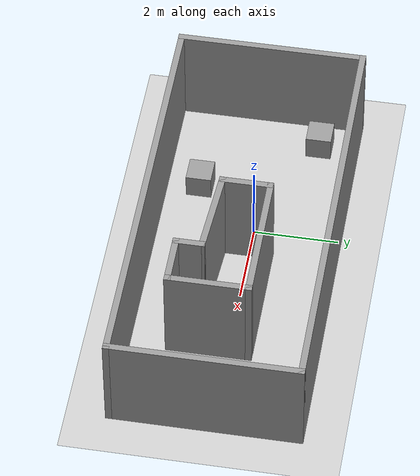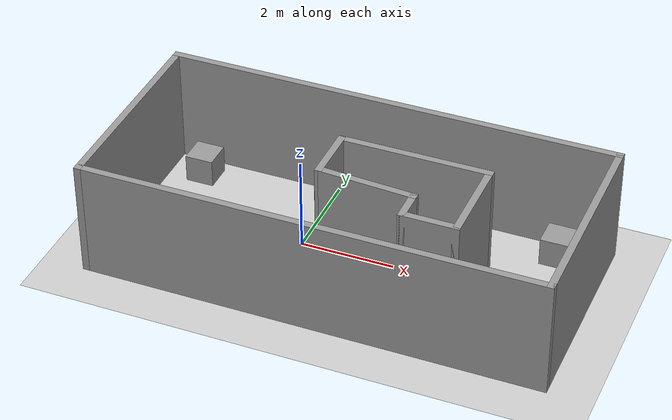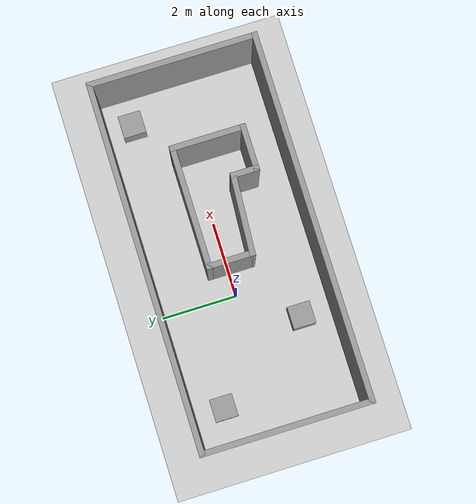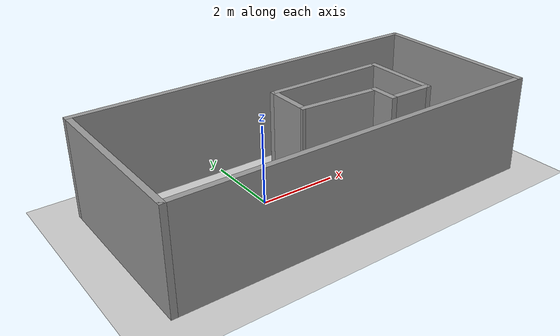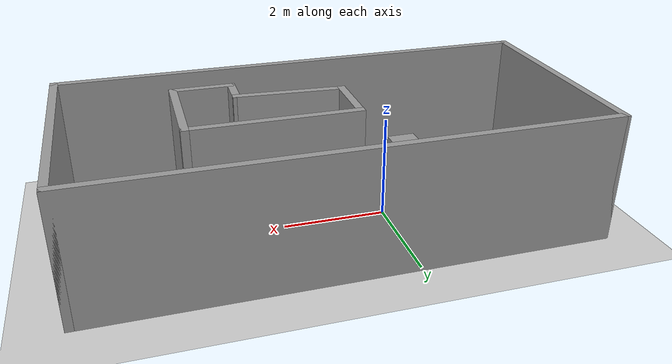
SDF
<sdf version="1.6">
 <world name="default">
  <light name="sun" type="directional">
   <pose>0 0 10 0 -0 0</pose>
   <diffuse>0.8 0.8 0.8 1</diffuse>
   <specular>0.2 0.2 0.2 1</specular>
   <attenuation>
    <range>1000</range>
    <constant>0.9</constant>
    <linear>0.01</linear>
    <quadratic>0.001</quadratic>
   </attenuation>
   <direction>-0.5 0.1 -0.9</direction>
  </light>
  <model name="ground_plane">
   <static>1</static>
   <link name="link">
    <collision name="collision">
     <geometry><plane><normal>0 0 1</normal><size>100 100</size></plane></geometry>
     <surface><friction><ode><mu>100</mu><mu2>50</mu2></ode></friction></surface>
    </collision>
    <visual name="visual">
     <cast_shadows>0</cast_shadows>
     <geometry><plane><normal>0 0 1</normal><size>100 100</size></plane></geometry>
     <material>
      <script><uri>file://media/materials/scripts/gazebo.material</uri><name>Gazebo/Grey</name></script>
     </material>
    </visual>
   </link>
  </model>
  <gravity>0 0 -9.8</gravity>
  <magnetic_field>6e-06 2.3e-05 -4.2e-05</magnetic_field>
  <atmosphere type="adiabatic"/>
  <physics name="default_physics" default="0" type="ode">
   <max_step_size>0.001</max_step_size>
   <real_time_factor>1</real_time_factor>
   <real_time_update_rate>1000</real_time_update_rate>
  </physics>
  <scene><ambient>0.4 0.4 0.4 1</ambient><background>0.7 0.7 0.7 1</background><shadows>1</shadows></scene>
  <audio><device>default</device></audio>
  <spherical_coordinates>
   <surface_model>EARTH_WGS84</surface_model>
   <latitude_deg>0</latitude_deg>
   <longitude_deg>0</longitude_deg>
   <elevation>0</elevation>
   <heading_deg>0</heading_deg>
  </spherical_coordinates>
  <model name="Untitledc2">
   <pose>1.14 -0.165 0 0 -0 0</pose>
   <link name="Wall_11">
    <collision name="Wall_11_Collision">
     <geometry><box><size>1.25 0.15 2.5</size></box></geometry>
     <pose>0 0 1.25 0 -0 0</pose>
    </collision>
    <visual name="Wall_11_Visual">
     <pose>0 0 1.25 0 -0 0</pose>
     <geometry><box><size>1.25 0.15 2.5</size></box></geometry>
     <material>
      <script><uri>file://media/materials/scripts/gazebo.material</uri><name>Gazebo/Grey</name></script>
      <ambient>1 1 1 1</ambient>
     </material>
     <meta><layer>0</layer></meta>
    </visual>
    <pose>-0.46 0.085 0 0 -0 -1.5708</pose>
   </link>
   <link name="Wall_13">
    <collision name="Wall_13_Collision">
     <geometry><box><size>0.75 0.15 2.5</size></box></geometry>
     <pose>0 0 1.25 0 -0 0</pose>
    </collision>
    <visual name="Wall_13_Visual">
     <pose>0 0 1.25 0 -0 0</pose>
     <geometry><box><size>0.75 0.15 2.5</size></box></geometry>
     <material>
      <script><uri>file://media/materials/scripts/gazebo.material</uri><name>Gazebo/Grey</name></script>
      <ambient>1 1 1 1</ambient>
     </material>
     <meta><layer>0</layer></meta>
    </visual>
    <pose>1.54 -0.895 0 0 -0 -1.5708</pose>
   </link>
   <link name="Wall_14">
    <collision name="Wall_14_Collision">
     <geometry><box><size>1.25 0.15 2.5</size></box></geometry>
     <pose>0 0 1.25 0 -0 0</pose>
    </collision>
    <visual name="Wall_14_Visual">
     <pose>0 0 1.25 0 -0 0</pose>
     <geometry><box><size>1.25 0.15 2.5</size></box></geometry>
     <material>
      <script><uri>file://media/materials/scripts/gazebo.material</uri><name>Gazebo/Grey</name></script>
      <ambient>1 1 1 1</ambient>
     </material>
     <meta><layer>0</layer></meta>
    </visual>
    <pose>2.09 -1.195 0 0 -0 0</pose>
   </link>
   <link name="Wall_15">
    <collision name="Wall_15_Collision">
     <geometry><box><size>2 0.15 2.5</size></box></geometry>
     <pose>0 0 1.25 0 -0 0</pose>
    </collision>
    <visual name="Wall_15_Visual">
     <pose>0 0 1.25 0 -0 0</pose>
     <geometry><box><size>2 0.15 2.5</size></box></geometry>
     <material>
      <script><uri>file://media/materials/scripts/gazebo.material</uri><name>Gazebo/Grey</name></script>
      <ambient>1 1 1 1</ambient>
     </material>
     <meta><layer>0</layer></meta>
    </visual>
    <pose>2.64 -0.27 0 0 -0 1.5708</pose>
   </link>
   <link name="Wall_16">
    <collision name="Wall_16_Collision">
     <geometry><box><size>3.25 0.15 2.5</size></box></geometry>
     <pose>0 0 1.25 0 -0 0</pose>
    </collision>
    <visual name="Wall_16_Visual">
     <pose>0 0 1.25 0 -0 0</pose>
     <geometry><box><size>3.25 0.15 2.5</size></box></geometry>
     <material>
      <script><uri>file://media/materials/scripts/gazebo.material</uri><name>Gazebo/Grey</name></script>
      <ambient>1 1 1 1</ambient>
     </material>
     <meta><layer>0</layer></meta>
    </visual>
    <pose>1.09 0.655 0 0 -0 3.14159</pose>
   </link>
   <link name="Wall_18">
    <collision name="Wall_18_Collision">
     <geometry><box><size>2.15422 0.15 2.5</size></box></geometry>
     <pose>0 0 1.25 0 -0 0</pose>
    </collision>
    <visual name="Wall_18_Visual">
     <pose>0 0 1.25 0 -0 0</pose>
     <geometry><box><size>2.15422 0.15 2.5</size></box></geometry>
     <material>
      <script><uri>file://media/materials/scripts/gazebo.material</uri><name>Gazebo/Grey</name></script>
      <ambient>1 1 1 1</ambient>
     </material>
     <meta><layer>0</layer></meta>
    </visual>
    <pose>0.54 -0.53 0 0 -0 -0.064909</pose>
   </link>
   <link name="Wall_3">
    <collision name="Wall_3_Collision">
     <geometry><box><size>4.5 0.15 2.5</size></box></geometry>
     <pose>0 0 1.25 0 -0 0</pose>
    </collision>
    <visual name="Wall_3_Visual">
     <pose>0 0 1.25 0 -0 0</pose>
     <geometry><box><size>4.5 0.15 2.5</size></box></geometry>
     <material>
      <script><uri>file://media/materials/scripts/gazebo.material</uri><name>Gazebo/Grey</name></script>
      <ambient>1 1 1 1</ambient>
     </material>
     <meta><layer>0</layer></meta>
    </visual>
    <pose>-4.8 -0 0 0 -0 -1.5708</pose>
   </link>
   <link name="Wall_5">
    <collision name="Wall_5_Collision">
     <geometry><box><size>9.75 0.15 2.5</size></box></geometry>
     <pose>0 0 1.25 0 -0 0</pose>
    </collision>
    <visual name="Wall_5_Visual">
     <pose>0 0 1.25 0 -0 0</pose>
     <geometry><box><size>9.75 0.15 2.5</size></box></geometry>
     <material>
      <script><uri>file://media/materials/scripts/gazebo.material</uri><name>Gazebo/Grey</name></script>
      <ambient>1 1 1 1</ambient>
     </material>
     <meta><layer>0</layer></meta>
    </visual>
    <pose>0 2.175 0 0 -0 0</pose>
   </link>
   <link name="Wall_6">
    <collision name="Wall_6_Collision">
     <geometry><box><size>4.5 0.15 2.5</size></box></geometry>
     <pose>0 0 1.25 0 -0 0</pose>
    </collision>
    <visual name="Wall_6_Visual">
     <pose>0 0 1.25 0 -0 0</pose>
     <geometry><box><size>4.5 0.15 2.5</size></box></geometry>
     <material>
      <script><uri>file://media/materials/scripts/gazebo.material</uri><name>Gazebo/Grey</name></script>
      <ambient>1 1 1 1</ambient>
     </material>
     <meta><layer>0</layer></meta>
    </visual>
    <pose>4.8 -0 0 0 -0 -1.5708</pose>
   </link>
   <link name="Wall_7">
    <collision name="Wall_7_Collision">
     <geometry><box><size>9.75 0.15 2.5</size></box></geometry>
     <pose>0 0 1.25 0 -0 0</pose>
    </collision>
    <visual name="Wall_7_Visual">
     <pose>0 0 1.25 0 -0 0</pose>
     <geometry><box><size>9.75 0.15 2.5</size></box></geometry>
     <material>
      <script><uri>file://media/materials/scripts/gazebo.material</uri><name>Gazebo/Grey</name></script>
      <ambient>1 1 1 1</ambient>
     </material>
     <meta><layer>0</layer></meta>
    </visual>
    <pose>0 -2.175 0 0 -0 3.14159</pose>
   </link>
   <static>1</static>
  </model>
  <model name="unit_box">
   <link name="link">
    <inertial>
     <mass>1</mass>
     <inertia>
      <ixx>0.166667</ixx>
      <ixy>0</ixy>
      <ixz>0</ixz>
      <iyy>0.166667</iyy>
      <iyz>0</iyz>
      <izz>0.166667</izz>
     </inertia>
    </inertial>
    <visual name="visual">
     <geometry><box><size>0.6 0.6 0.6</size></box></geometry>
     <material>
      <script><name>Gazebo/Grey</name><uri>file://media/materials/scripts/gazebo.material</uri></script>
      <shader type="vertex"><normal_map>__default__</normal_map></shader>
      <ambient>0.3 0.3 0.3 1</ambient>
      <diffuse>0.7 0.7 0.7 1</diffuse>
      <specular>0.01 0.01 0.01 1</specular>
      <emissive>0 0 0 1</emissive>
     </material>
    </visual>
    <collision name="collision">
     <geometry><box><size>0.6 0.6 0.6</size></box></geometry>
     <surface>
      <friction>
       <ode><mu>1</mu><mu2>1</mu2><fdir1>0 0 0</fdir1><slip1>0</slip1><slip2>0</slip2></ode>
       <torsional>
        <coefficient>1</coefficient>
        <patch_radius>0</patch_radius>
        <surface_radius>0</surface_radius>
        <use_patch_radius>1</use_patch_radius>
        <ode><slip>0</slip></ode>
       </torsional>
      </friction>
      <bounce><restitution_coefficient>0</restitution_coefficient><threshold>1e+06</threshold></bounce>
      <contact>
       <collide_without_contact>0</collide_without_contact>
       <collide_without_contact_bitmask>1</collide_without_contact_bitmask>
       <collide_bitmask>1</collide_bitmask>
       <ode>
        <soft_cfm>0</soft_cfm>
        <soft_erp>0.2</soft_erp>
        <kp>1e+13</kp>
        <kd>1</kd>
        <max_vel>0.01</max_vel>
        <min_depth>0</min_depth>
       </ode>
       <bullet>
        <split_impulse>1</split_impulse>
        <split_impulse_penetration_threshold>-0.01</split_impulse_penetration_threshold>
        <soft_cfm>0</soft_cfm>
        <soft_erp>0.2</soft_erp>
        <kp>1e+13</kp>
        <kd>1</kd>
       </bullet>
      </contact>
     </surface>
    </collision>
   </link>
   <link name="link_clone">
    <inertial>
     <mass>1</mass>
     <inertia>
      <ixx>0.166667</ixx>
      <ixy>0</ixy>
      <ixz>0</ixz>
      <iyy>0.166667</iyy>
      <iyz>0</iyz>
      <izz>0.166667</izz>
     </inertia>
    </inertial>
    <pose>1.67513 -2.6145 0 0 -0 0</pose>
    <visual name="visual">
     <geometry><box><size>0.6 0.6 0.6</size></box></geometry>
     <material>
      <script><name>Gazebo/Grey</name><uri>file://media/materials/scripts/gazebo.material</uri></script>
      <shader type="vertex"><normal_map>__default__</normal_map></shader>
      <ambient>0.3 0.3 0.3 1</ambient>
      <diffuse>0.7 0.7 0.7 1</diffuse>
      <specular>0.01 0.01 0.01 1</specular>
      <emissive>0 0 0 1</emissive>
     </material>
    </visual>
    <collision name="collision">
     <geometry><box><size>0.6 0.6 0.6</size></box></geometry>
     <surface>
      <friction>
       <ode><mu>1</mu><mu2>1</mu2><fdir1>0 0 0</fdir1><slip1>0</slip1><slip2>0</slip2></ode>
       <torsional>
        <coefficient>1</coefficient>
        <patch_radius>0</patch_radius>
        <surface_radius>0</surface_radius>
        <use_patch_radius>1</use_patch_radius>
        <ode><slip>0</slip></ode>
       </torsional>
      </friction>
      <bounce><restitution_coefficient>0</restitution_coefficient><threshold>1e+06</threshold></bounce>
      <contact>
       <collide_without_contact>0</collide_without_contact>
       <collide_without_contact_bitmask>1</collide_without_contact_bitmask>
       <collide_bitmask>1</collide_bitmask>
       <ode>
        <soft_cfm>0</soft_cfm>
        <soft_erp>0.2</soft_erp>
        <kp>1e+13</kp>
        <kd>1</kd>
        <max_vel>0.01</max_vel>
        <min_depth>0</min_depth>
       </ode>
       <bullet>
        <split_impulse>1</split_impulse>
        <split_impulse_penetration_threshold>-0.01</split_impulse_penetration_threshold>
        <soft_cfm>0</soft_cfm>
        <soft_erp>0.2</soft_erp>
        <kp>1e+13</kp>
        <kd>1</kd>
       </bullet>
      </contact>
     </surface>
    </collision>
   </link>
   <link name="link_clone_0">
    <inertial>
     <mass>1</mass>
     <inertia>
      <ixx>0.166667</ixx>
      <ixy>0</ixy>
      <ixz>0</ixz>
      <iyy>0.166667</iyy>
      <iyz>0</iyz>
      <izz>0.166667</izz>
     </inertia>
    </inertial>
    <pose>7.74183 0.108776 -0 0 -0 0</pose>
    <visual name="visual">
     <geometry><box><size>0.6 0.6 0.6</size></box></geometry>
     <material>
      <script><name>Gazebo/Grey</name><uri>file://media/materials/scripts/gazebo.material</uri></script>
      <shader type="vertex"><normal_map>__default__</normal_map></shader>
      <ambient>0.3 0.3 0.3 1</ambient>
      <diffuse>0.7 0.7 0.7 1</diffuse>
      <specular>0.01 0.01 0.01 1</specular>
      <emissive>0 0 0 1</emissive>
     </material>
    </visual>
    <collision name="collision">
     <geometry><box><size>0.6 0.6 0.6</size></box></geometry>
     <surface>
      <friction>
       <ode><mu>1</mu><mu2>1</mu2><fdir1>0 0 0</fdir1><slip1>0</slip1><slip2>0</slip2></ode>
       <torsional>
        <coefficient>1</coefficient>
        <patch_radius>0</patch_radius>
        <surface_radius>0</surface_radius>
        <use_patch_radius>1</use_patch_radius>
        <ode><slip>0</slip></ode>
       </torsional>
      </friction>
      <bounce><restitution_coefficient>0</restitution_coefficient><threshold>1e+06</threshold></bounce>
      <contact>
       <collide_without_contact>0</collide_without_contact>
       <collide_without_contact_bitmask>1</collide_without_contact_bitmask>
       <collide_bitmask>1</collide_bitmask>
       <ode>
        <soft_cfm>0</soft_cfm>
        <soft_erp>0.2</soft_erp>
        <kp>1e+13</kp>
        <kd>1</kd>
        <max_vel>0.01</max_vel>
        <min_depth>0</min_depth>
       </ode>
       <bullet>
        <split_impulse>1</split_impulse>
        <split_impulse_penetration_threshold>-0.01</split_impulse_penetration_threshold>
        <soft_cfm>0</soft_cfm>
        <soft_erp>0.2</soft_erp>
        <kp>1e+13</kp>
        <kd>1</kd>
       </bullet>
      </contact>
     </surface>
    </collision>
   </link>
   <static>0</static>
   <pose>-2.70612 1.16484 0.5 0 -0 0</pose>
  </model>
 </world>
</sdf>
